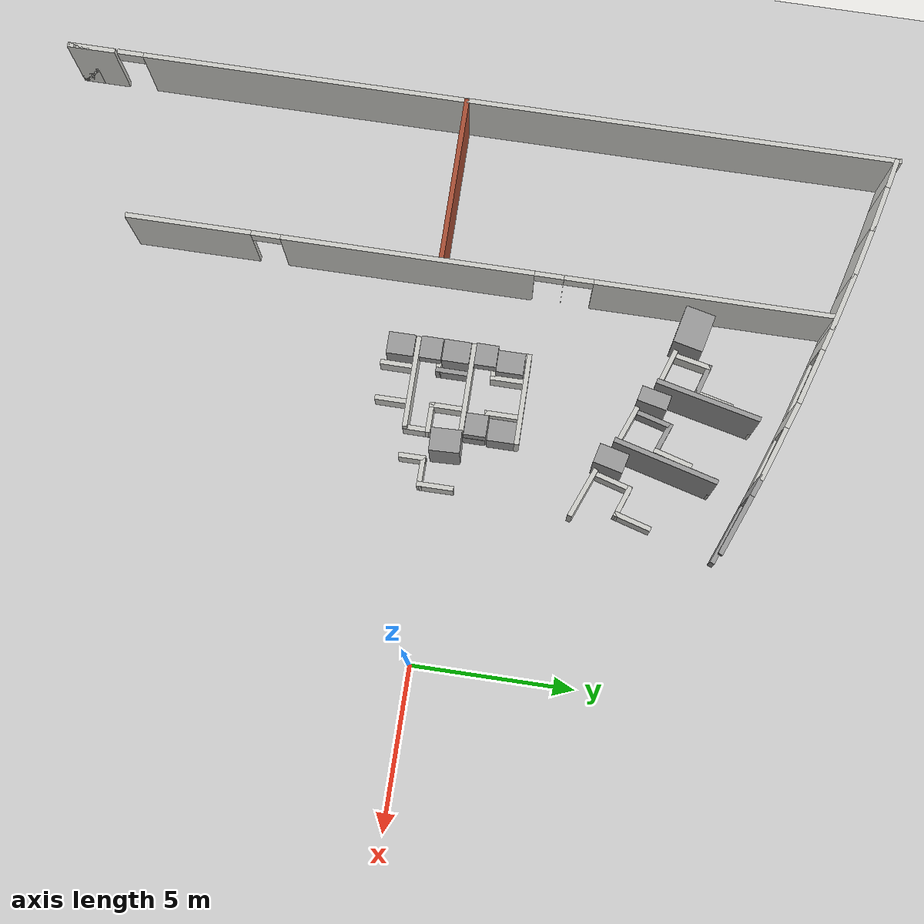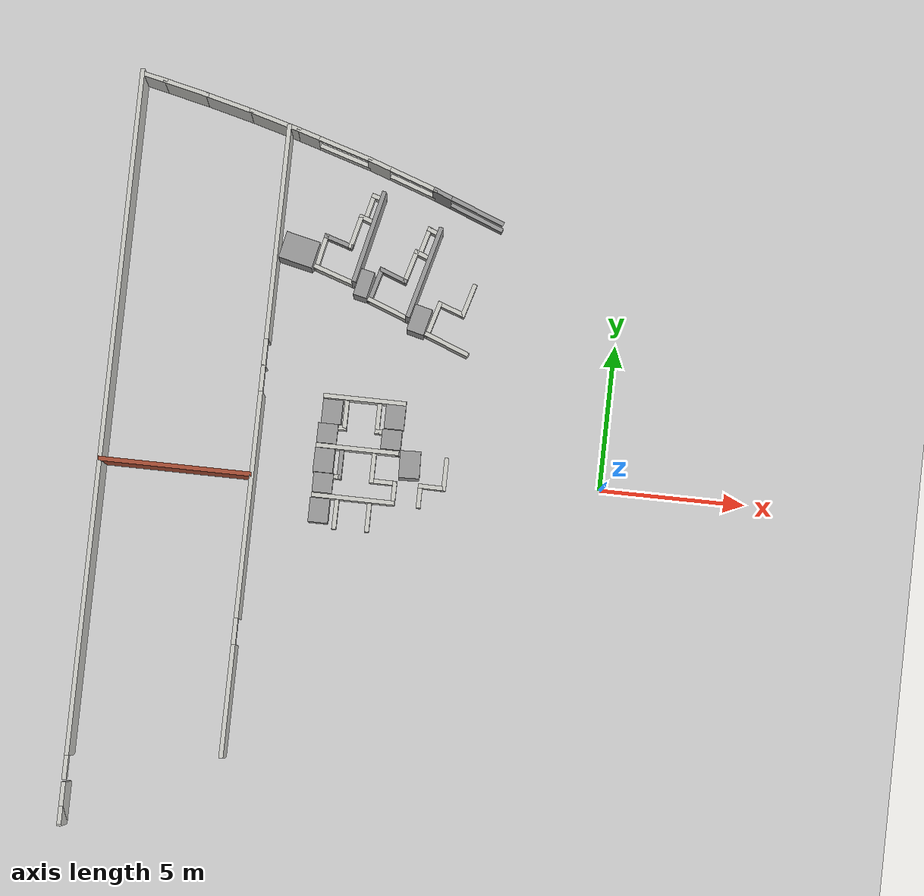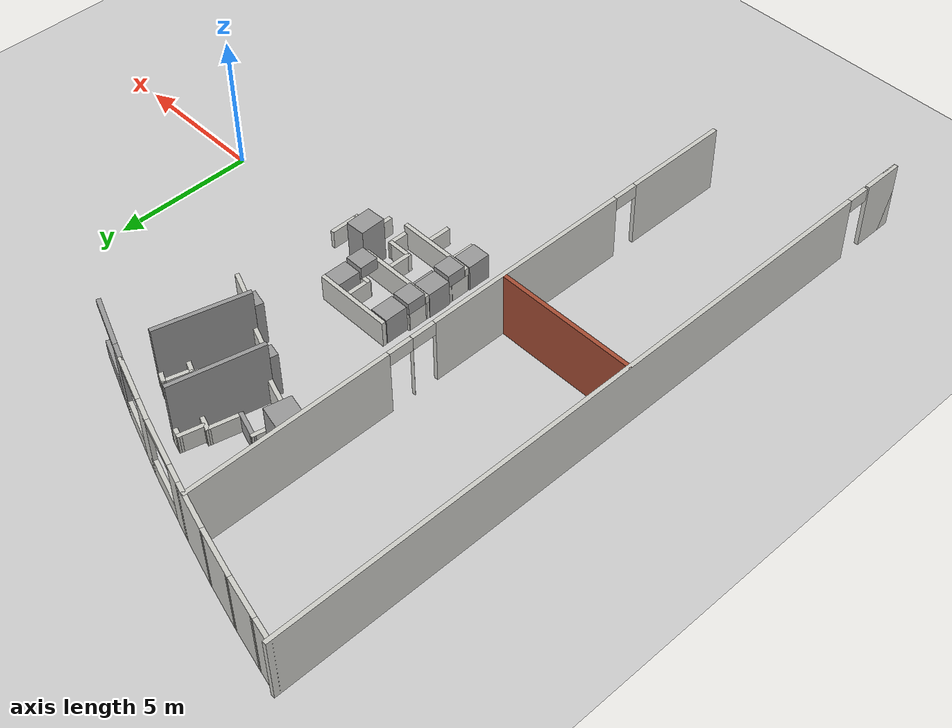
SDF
<sdf version="1.7">
 <world name="default">
  <model name="ground_plane">
   <static>1</static>
   <link name="link">
    <collision name="collision">
     <geometry><plane><normal>0 0 1</normal><size>100 100</size></plane></geometry>
     <surface><friction><ode><mu>100</mu><mu2>50</mu2></ode></friction></surface>
    </collision>
    <visual name="visual">
     <cast_shadows>0</cast_shadows>
     <geometry><plane><normal>0 0 1</normal><size>100 100</size></plane></geometry>
     <material>
      <script><uri>file://media/materials/scripts/gazebo.material</uri><name>Gazebo/Grey</name></script>
     </material>
    </visual>
   </link>
  </model>
  <model name="batclab">
   <pose>-2.42536 -0.386876 0 0 -0 0</pose>
   <link name="Wall_0">
    <pose>-14.7338 2.1e-05 0 0 -0 -1.57114</pose>
    <visual name="Wall_0_Visual_0">
     <pose>-1.19866 0 1.25 0 -0 0</pose>
     <geometry><box><size>23.5775 0.15 2.5</size></box></geometry>
     <material>
      <script><uri>file://media/materials/scripts/gazebo.material</uri><name>Gazebo/CeilingTiled</name></script>
      <ambient>1 1 1 1</ambient>
     </material>
     <meta><layer>0</layer></meta>
    </visual>
    <collision name="Wall_0_Collision_0">
     <geometry><box><size>23.5775 0.15 2.5</size></box></geometry>
     <pose>-1.19866 0 1.25 0 -0 0</pose>
    </collision>
    <visual name="Wall_0_Visual_1">
     <pose>12.2388 0 1.25 0 -0 0</pose>
     <geometry><box><size>1.49732 0.15 2.5</size></box></geometry>
     <material>
      <script><uri>file://media/materials/scripts/gazebo.material</uri><name>Gazebo/CeilingTiled</name></script>
      <ambient>1 1 1 1</ambient>
     </material>
     <meta><layer>0</layer></meta>
    </visual>
    <collision name="Wall_0_Collision_1">
     <geometry><box><size>1.49732 0.15 2.5</size></box></geometry>
     <pose>12.2388 0 1.25 0 -0 0</pose>
    </collision>
    <visual name="Wall_0_Visual_2">
     <pose>12.6483 0 1.25 0 -0 0</pose>
     <geometry><box><size>0.678351 0.15 2.5</size></box></geometry>
     <material>
      <script><uri>file://media/materials/scripts/gazebo.material</uri><name>Gazebo/CeilingTiled</name></script>
      <ambient>1 1 1 1</ambient>
     </material>
     <meta><layer>0</layer></meta>
    </visual>
    <collision name="Wall_0_Collision_2">
     <geometry><box><size>0.678351 0.15 2.5</size></box></geometry>
     <pose>12.6483 0 1.25 0 -0 0</pose>
    </collision>
    <visual name="Wall_0_Visual_3">
     <pose>10.9996 0 2.25 0 -0 0</pose>
     <geometry><box><size>0.81897 0.15 0.5</size></box></geometry>
     <material>
      <script><uri>file://media/materials/scripts/gazebo.material</uri><name>Gazebo/CeilingTiled</name></script>
      <ambient>1 1 1 1</ambient>
     </material>
     <meta><layer>0</layer></meta>
    </visual>
    <collision name="Wall_0_Collision_3">
     <geometry><box><size>0.81897 0.15 0.5</size></box></geometry>
     <pose>10.9996 0 2.25 0 -0 0</pose>
    </collision>
   </link>
   <link name="Wall_13">
    <pose>-9.5299 0.73431 0 0 -0 1.5708</pose>
    <visual name="Wall_13_Visual_0">
     <pose>-8.93757 0 1.25 0 -0 0</pose>
     <geometry><box><size>3.87486 0.15 2.5</size></box></geometry>
     <material>
      <script><uri>file://media/materials/scripts/gazebo.material</uri><name>Gazebo/CeilingTiled</name></script>
      <ambient>1 1 1 1</ambient>
     </material>
     <meta><layer>0</layer></meta>
    </visual>
    <collision name="Wall_13_Collision_0">
     <geometry><box><size>3.87486 0.15 2.5</size></box></geometry>
     <pose>-8.93757 0 1.25 0 -0 0</pose>
    </collision>
    <visual name="Wall_13_Visual_1">
     <pose>-2.21758 0 1.25 0 -0 0</pose>
     <geometry><box><size>7.76512 0.15 2.5</size></box></geometry>
     <material>
      <script><uri>file://media/materials/scripts/gazebo.material</uri><name>Gazebo/CeilingTiled</name></script>
      <ambient>1 1 1 1</ambient>
     </material>
     <meta><layer>0</layer></meta>
    </visual>
    <collision name="Wall_13_Collision_1">
     <geometry><box><size>7.76512 0.15 2.5</size></box></geometry>
     <pose>-2.21758 0 1.25 0 -0 0</pose>
    </collision>
    <visual name="Wall_13_Visual_2">
     <pose>2.56716 0 1.25 0 -0 0</pose>
     <geometry><box><size>0.004348 0.15 2.5</size></box></geometry>
     <material>
      <script><uri>file://media/materials/scripts/gazebo.material</uri><name>Gazebo/CeilingTiled</name></script>
      <ambient>1 1 1 1</ambient>
     </material>
     <meta><layer>0</layer></meta>
    </visual>
    <collision name="Wall_13_Collision_2">
     <geometry><box><size>0.004348 0.15 2.5</size></box></geometry>
     <pose>2.56716 0 1.25 0 -0 0</pose>
    </collision>
    <visual name="Wall_13_Visual_3">
     <pose>7.17216 0 1.25 0 -0 0</pose>
     <geometry><box><size>7.40567 0.15 2.5</size></box></geometry>
     <material>
      <script><uri>file://media/materials/scripts/gazebo.material</uri><name>Gazebo/CeilingTiled</name></script>
      <ambient>1 1 1 1</ambient>
     </material>
     <meta><layer>0</layer></meta>
    </visual>
    <collision name="Wall_13_Collision_3">
     <geometry><box><size>7.40567 0.15 2.5</size></box></geometry>
     <pose>7.17216 0 1.25 0 -0 0</pose>
    </collision>
    <visual name="Wall_13_Visual_4">
     <pose>-6.55014 0 2.25 0 -0 0</pose>
     <geometry><box><size>0.9 0.15 0.5</size></box></geometry>
     <material>
      <script><uri>file://media/materials/scripts/gazebo.material</uri><name>Gazebo/CeilingTiled</name></script>
      <ambient>1 1 1 1</ambient>
     </material>
     <meta><layer>0</layer></meta>
    </visual>
    <collision name="Wall_13_Collision_4">
     <geometry><box><size>0.9 0.15 0.5</size></box></geometry>
     <pose>-6.55014 0 2.25 0 -0 0</pose>
    </collision>
    <visual name="Wall_13_Visual_5">
     <pose>2.11498 0 2.25 0 -0 0</pose>
     <geometry><box><size>0.9 0.15 0.5</size></box></geometry>
     <material>
      <script><uri>file://media/materials/scripts/gazebo.material</uri><name>Gazebo/CeilingTiled</name></script>
      <ambient>1 1 1 1</ambient>
     </material>
     <meta><layer>0</layer></meta>
    </visual>
    <collision name="Wall_13_Collision_5">
     <geometry><box><size>0.9 0.15 0.5</size></box></geometry>
     <pose>2.11498 0 2.25 0 -0 0</pose>
    </collision>
    <visual name="Wall_13_Visual_6">
     <pose>3.01933 0 2.25 0 -0 0</pose>
     <geometry><box><size>0.9 0.15 0.5</size></box></geometry>
     <material>
      <script><uri>file://media/materials/scripts/gazebo.material</uri><name>Gazebo/CeilingTiled</name></script>
      <ambient>1 1 1 1</ambient>
     </material>
     <meta><layer>0</layer></meta>
    </visual>
    <collision name="Wall_13_Collision_6">
     <geometry><box><size>0.9 0.15 0.5</size></box></geometry>
     <pose>3.01933 0 2.25 0 -0 0</pose>
    </collision>
   </link>
   <link name="Wall_17">
    <collision name="Wall_17_Collision">
     <geometry><box><size>5.25 0.15 2.5</size></box></geometry>
     <pose>0 0 1.25 0 -0 0</pose>
    </collision>
    <visual name="Wall_17_Visual">
     <pose>0 0 1.25 0 -0 0</pose>
     <geometry><box><size>5.25 0.15 2.5</size></box></geometry>
     <material>
      <script><uri>file://media/materials/scripts/gazebo.material</uri><name>Gazebo/Bricks</name></script>
      <ambient>1 1 1 1</ambient>
     </material>
     <meta><layer>0</layer></meta>
    </visual>
    <pose>-12.1548 -0.450287 0 0 -0 0</pose>
   </link>
   <link name="Wall_174">
    <collision name="Wall_174_Collision">
     <geometry><box><size>1.13639 0.15 0.7</size></box></geometry>
     <pose>0 0 0.35 0 -0 0</pose>
    </collision>
    <visual name="Wall_174_Visual">
     <pose>0 0 0.35 0 -0 0</pose>
     <geometry><box><size>1.13639 0.15 0.7</size></box></geometry>
     <material>
      <script><uri>file://media/materials/scripts/gazebo.material</uri><name>Gazebo/CeilingTiled</name></script>
      <ambient>1 1 1 1</ambient>
     </material>
     <meta><layer>0</layer></meta>
    </visual>
    <pose>-2.97942 0.340393 0 0 -0 -1.5708</pose>
   </link>
   <link name="Wall_175">
    <collision name="Wall_175_Collision">
     <geometry><box><size>0.960148 0.15 0.7</size></box></geometry>
     <pose>0 0 0.35 0 -0 0</pose>
    </collision>
    <visual name="Wall_175_Visual">
     <pose>0 0 0.35 0 -0 0</pose>
     <geometry><box><size>0.960148 0.15 0.7</size></box></geometry>
     <material>
      <script><uri>file://media/materials/scripts/gazebo.material</uri><name>Gazebo/CeilingTiled</name></script>
      <ambient>1 1 1 1</ambient>
     </material>
     <meta><layer>0</layer></meta>
    </visual>
    <pose>-3.38442 -0.149607 0 0 -0 3.13418</pose>
   </link>
   <link name="Wall_176">
    <collision name="Wall_176_Collision">
     <geometry><box><size>0.838069 0.15 0.7</size></box></geometry>
     <pose>0 0 0.35 0 -0 0</pose>
    </collision>
    <visual name="Wall_176_Visual">
     <pose>0 0 0.35 0 -0 0</pose>
     <geometry><box><size>0.838069 0.15 0.7</size></box></geometry>
     <material>
      <script><uri>file://media/materials/scripts/gazebo.material</uri><name>Gazebo/CeilingTiled</name></script>
      <ambient>1 1 1 1</ambient>
     </material>
     <meta><layer>0</layer></meta>
    </visual>
    <pose>-3.78792 -0.490607 0 0 -0 -1.56644</pose>
   </link>
   <link name="Wall_19">
    <collision name="Wall_19_Collision">
     <geometry><box><size>0.980234 0.15 2.5</size></box></geometry>
     <pose>0 0 1.25 0 -0 0</pose>
    </collision>
    <visual name="Wall_19_Visual">
     <pose>0 0 1.25 0 -0 0</pose>
     <geometry><box><size>0.980234 0.15 2.5</size></box></geometry>
     <material>
      <script><uri>file://media/materials/scripts/gazebo.material</uri><name>Gazebo/CeilingTiled</name></script>
      <ambient>1 1 1 1</ambient>
     </material>
     <meta><layer>0</layer></meta>
    </visual>
    <pose>-14.3103 12.7485 0 0 -0 -0.214253</pose>
   </link>
   <link name="Wall_20">
    <collision name="Wall_20_Collision">
     <geometry><box><size>1.63752 0.15 2.5</size></box></geometry>
     <pose>0 0 1.25 0 -0 0</pose>
    </collision>
    <visual name="Wall_20_Visual">
     <pose>0 0 1.25 0 -0 0</pose>
     <geometry><box><size>1.63752 0.15 2.5</size></box></geometry>
     <material>
      <script><uri>file://media/materials/scripts/gazebo.material</uri><name>Gazebo/CeilingTiled</name></script>
      <ambient>1 1 1 1</ambient>
     </material>
     <meta><layer>0</layer></meta>
    </visual>
    <pose>-13.1787 12.4947 0 0 -0 -0.224148</pose>
   </link>
   <link name="Wall_21">
    <collision name="Wall_21_Collision">
     <geometry><box><size>1.79395 0.15 2.5</size></box></geometry>
     <pose>0 0 1.25 0 -0 0</pose>
    </collision>
    <visual name="Wall_21_Visual">
     <pose>0 0 1.25 0 -0 0</pose>
     <geometry><box><size>1.79395 0.15 2.5</size></box></geometry>
     <material>
      <script><uri>file://media/materials/scripts/gazebo.material</uri><name>Gazebo/CeilingTiled</name></script>
      <ambient>1 1 1 1</ambient>
     </material>
     <meta><layer>0</layer></meta>
    </visual>
    <pose>-11.6562 12.1282 0 0 -0 -0.247197</pose>
   </link>
   <link name="Wall_22">
    <collision name="Wall_22_Collision">
     <geometry><box><size>1.89028 0.15 2.5</size></box></geometry>
     <pose>0 0 1.25 0 -0 0</pose>
    </collision>
    <visual name="Wall_22_Visual">
     <pose>0 0 1.25 0 -0 0</pose>
     <geometry><box><size>1.89028 0.15 2.5</size></box></geometry>
     <material>
      <script><uri>file://media/materials/scripts/gazebo.material</uri><name>Gazebo/CeilingTiled</name></script>
      <ambient>1 1 1 1</ambient>
     </material>
     <meta><layer>0</layer></meta>
    </visual>
    <pose>-10.0209 11.694 0 0 -0 -0.271178</pose>
   </link>
   <link name="Wall_25">
    <pose>-7.91226 11.0755 0 0 -0 -0.294575</pose>
    <visual name="Wall_25_Visual_0">
     <pose>-0.982686 0 1.25 0 -0 0</pose>
     <geometry><box><size>0.839533 0.15 2.5</size></box></geometry>
     <material>
      <script><uri>file://media/materials/scripts/gazebo.material</uri><name>Gazebo/CeilingTiled</name></script>
      <ambient>1 1 1 1</ambient>
     </material>
     <meta><layer>0</layer></meta>
    </visual>
    <collision name="Wall_25_Collision_0">
     <geometry><box><size>0.839533 0.15 2.5</size></box></geometry>
     <pose>-0.982686 0 1.25 0 -0 0</pose>
    </collision>
    <visual name="Wall_25_Visual_1">
     <pose>0.419767 0 0.35 0 -0 0</pose>
     <geometry><box><size>1.96537 0.15 0.7</size></box></geometry>
     <material>
      <script><uri>file://media/materials/scripts/gazebo.material</uri><name>Gazebo/CeilingTiled</name></script>
      <ambient>1 1 1 1</ambient>
     </material>
     <meta><layer>0</layer></meta>
    </visual>
    <collision name="Wall_25_Collision_1">
     <geometry><box><size>1.96537 0.15 0.7</size></box></geometry>
     <pose>0.419767 0 0.35 0 -0 0</pose>
    </collision>
    <visual name="Wall_25_Visual_2">
     <pose>0.419767 0 2.4 0 -0 0</pose>
     <geometry><box><size>1.96537 0.15 0.2</size></box></geometry>
     <material>
      <script><uri>file://media/materials/scripts/gazebo.material</uri><name>Gazebo/CeilingTiled</name></script>
      <ambient>1 1 1 1</ambient>
     </material>
     <meta><layer>0</layer></meta>
    </visual>
    <collision name="Wall_25_Collision_2">
     <geometry><box><size>1.96537 0.15 0.2</size></box></geometry>
     <pose>0.419767 0 2.4 0 -0 0</pose>
    </collision>
   </link>
   <link name="Wall_26">
    <pose>-5.47851 10.2871 0 0 -0 -0.333469</pose>
    <visual name="Wall_26_Visual_0">
     <pose>-0.885369 0 1.25 0 -0 0</pose>
     <geometry><box><size>0.841858 0.15 2.5</size></box></geometry>
     <material>
      <script><uri>file://media/materials/scripts/gazebo.material</uri><name>Gazebo/CeilingTiled</name></script>
      <ambient>1 1 1 1</ambient>
     </material>
     <meta><layer>0</layer></meta>
    </visual>
    <collision name="Wall_26_Collision_0">
     <geometry><box><size>0.841858 0.15 2.5</size></box></geometry>
     <pose>-0.885369 0 1.25 0 -0 0</pose>
    </collision>
    <visual name="Wall_26_Visual_1">
     <pose>0.420929 0 0.35 0 -0 0</pose>
     <geometry><box><size>1.77074 0.15 0.7</size></box></geometry>
     <material>
      <script><uri>file://media/materials/scripts/gazebo.material</uri><name>Gazebo/CeilingTiled</name></script>
      <ambient>1 1 1 1</ambient>
     </material>
     <meta><layer>0</layer></meta>
    </visual>
    <collision name="Wall_26_Collision_1">
     <geometry><box><size>1.77074 0.15 0.7</size></box></geometry>
     <pose>0.420929 0 0.35 0 -0 0</pose>
    </collision>
    <visual name="Wall_26_Visual_2">
     <pose>0.420929 0 2.4 0 -0 0</pose>
     <geometry><box><size>1.77074 0.15 0.2</size></box></geometry>
     <material>
      <script><uri>file://media/materials/scripts/gazebo.material</uri><name>Gazebo/CeilingTiled</name></script>
      <ambient>1 1 1 1</ambient>
     </material>
     <meta><layer>0</layer></meta>
    </visual>
    <collision name="Wall_26_Collision_2">
     <geometry><box><size>1.77074 0.15 0.2</size></box></geometry>
     <pose>0.420929 0 2.4 0 -0 0</pose>
    </collision>
   </link>
   <link name="Wall_260">
    <collision name="Wall_260_Collision">
     <geometry><box><size>1.61994 0.15 1</size></box></geometry>
     <pose>0 0 0.5 0 -0 0</pose>
    </collision>
    <visual name="Wall_260_Visual">
     <pose>0 0 0.5 0 -0 0</pose>
     <geometry><box><size>1.61994 0.15 1</size></box></geometry>
     <material>
      <script><uri>file://media/materials/scripts/gazebo.material</uri><name>Gazebo/CeilingTiled</name></script>
      <ambient>1 1 1 1</ambient>
     </material>
     <meta><layer>0</layer></meta>
    </visual>
    <pose>-7.45592 6.77139 0 0 -0 -0.321105</pose>
   </link>
   <link name="Wall_261">
    <collision name="Wall_261_Collision">
     <geometry><box><size>3.26384 0.15 2.5</size></box></geometry>
     <pose>0 0 1.25 0 -0 0</pose>
    </collision>
    <visual name="Wall_261_Visual">
     <pose>0 0 1.25 0 -0 0</pose>
     <geometry><box><size>3.26384 0.15 2.5</size></box></geometry>
     <material>
      <script><uri>file://media/materials/scripts/gazebo.material</uri><name>Gazebo/Grey</name></script>
      <ambient>1 1 1 1</ambient>
     </material>
     <meta><layer>0</layer></meta>
    </visual>
    <pose>-6.41292 8.05739 0 0 -0 1.34701</pose>
   </link>
   <link name="Wall_262">
    <collision name="Wall_262_Collision">
     <geometry><box><size>0.531707 0.15 0.7</size></box></geometry>
     <pose>0 0 0.35 0 -0 0</pose>
    </collision>
    <visual name="Wall_262_Visual">
     <pose>0 0 0.35 0 -0 0</pose>
     <geometry><box><size>0.531707 0.15 0.7</size></box></geometry>
     <material>
      <script><uri>file://media/materials/scripts/gazebo.material</uri><name>Gazebo/CeilingTiled</name></script>
      <ambient>1 1 1 1</ambient>
     </material>
     <meta><layer>0</layer></meta>
    </visual>
    <pose>-6.24992 9.62989 0 0 -0 2.85139</pose>
   </link>
   <link name="Wall_263">
    <collision name="Wall_263_Collision">
     <geometry><box><size>0.909916 0.15 0.7</size></box></geometry>
     <pose>0 0 0.35 0 -0 0</pose>
    </collision>
    <visual name="Wall_263_Visual">
     <pose>0 0 0.35 0 -0 0</pose>
     <geometry><box><size>0.909916 0.15 0.7</size></box></geometry>
     <material>
      <script><uri>file://media/materials/scripts/gazebo.material</uri><name>Gazebo/CeilingTiled</name></script>
      <ambient>1 1 1 1</ambient>
     </material>
     <meta><layer>0</layer></meta>
    </visual>
    <pose>-6.52392 9.31539 0 0 -0 -1.81386</pose>
   </link>
   <link name="Wall_265">
    <collision name="Wall_265_Collision">
     <geometry><box><size>1.29489 0.15 0.7</size></box></geometry>
     <pose>0 0 0.35 0 -0 0</pose>
    </collision>
    <visual name="Wall_265_Visual">
     <pose>0 0 0.35 0 -0 0</pose>
     <geometry><box><size>1.29489 0.15 0.7</size></box></geometry>
     <material>
      <script><uri>file://media/materials/scripts/gazebo.material</uri><name>Gazebo/CeilingTiled</name></script>
      <ambient>1 1 1 1</ambient>
     </material>
     <meta><layer>0</layer></meta>
    </visual>
    <pose>-8.03642 7.56339 0 0 -0 1.36483</pose>
   </link>
   <link name="Wall_266">
    <collision name="Wall_266_Collision">
     <geometry><box><size>1.05966 0.15 0.7</size></box></geometry>
     <pose>0 0 0.35 0 -0 0</pose>
    </collision>
    <visual name="Wall_266_Visual">
     <pose>0 0 0.35 0 -0 0</pose>
     <geometry><box><size>1.05966 0.15 0.7</size></box></geometry>
     <material>
      <script><uri>file://media/materials/scripts/gazebo.material</uri><name>Gazebo/Grey</name></script>
      <ambient>1 1 1 1</ambient>
     </material>
     <meta><layer>0</layer></meta>
    </visual>
    <pose>-7.48492 7.98889 0 0 -0 -0.300196</pose>
   </link>
   <link name="Wall_268">
    <collision name="Wall_268_Collision">
     <geometry><box><size>1.24414 0.15 0.7</size></box></geometry>
     <pose>0 0 0.35 0 -0 0</pose>
    </collision>
    <visual name="Wall_268_Visual">
     <pose>0 0 0.35 0 -0 0</pose>
     <geometry><box><size>1.24414 0.15 0.7</size></box></geometry>
     <material>
      <script><uri>file://media/materials/scripts/gazebo.material</uri><name>Gazebo/CeilingTiled</name></script>
      <ambient>1 1 1 1</ambient>
     </material>
     <meta><layer>0</layer></meta>
    </visual>
    <pose>-6.92192 8.38639 0 0 -0 1.33379</pose>
   </link>
   <link name="Wall_269">
    <collision name="Wall_269_Collision">
     <geometry><box><size>0.645417 0.15 0.7</size></box></geometry>
     <pose>0 0 0.35 0 -0 0</pose>
    </collision>
    <visual name="Wall_269_Visual">
     <pose>0 0 0.35 0 -0 0</pose>
     <geometry><box><size>0.645417 0.15 0.7</size></box></geometry>
     <material>
      <script><uri>file://media/materials/scripts/gazebo.material</uri><name>Gazebo/CeilingTiled</name></script>
      <ambient>1 1 1 1</ambient>
     </material>
     <meta><layer>0</layer></meta>
    </visual>
    <pose>-6.55892 8.83839 0 0 -0 -0.32877</pose>
   </link>
   <link name="Wall_27">
    <pose>-3.13637 9.42777 0 0 -0 -0.369334</pose>
    <visual name="Wall_27_Visual_0">
     <pose>-0.991438 0 1.25 0 -0 0</pose>
     <geometry><box><size>0.694935 0.15 2.5</size></box></geometry>
     <material>
      <script><uri>file://media/materials/scripts/gazebo.material</uri><name>Gazebo/Grey</name></script>
      <ambient>1 1 1 1</ambient>
     </material>
     <meta><layer>0</layer></meta>
    </visual>
    <collision name="Wall_27_Collision_0">
     <geometry><box><size>0.694935 0.15 2.5</size></box></geometry>
     <pose>-0.991438 0 1.25 0 -0 0</pose>
    </collision>
    <visual name="Wall_27_Visual_1">
     <pose>0.347468 0 0.35 0 -0 0</pose>
     <geometry><box><size>1.98288 0.15 0.7</size></box></geometry>
     <material>
      <script><uri>file://media/materials/scripts/gazebo.material</uri><name>Gazebo/Grey</name></script>
      <ambient>1 1 1 1</ambient>
     </material>
     <meta><layer>0</layer></meta>
    </visual>
    <collision name="Wall_27_Collision_1">
     <geometry><box><size>1.98288 0.15 0.7</size></box></geometry>
     <pose>0.347468 0 0.35 0 -0 0</pose>
    </collision>
    <visual name="Wall_27_Visual_2">
     <pose>0.347468 0 2.4 0 -0 0</pose>
     <geometry><box><size>1.98288 0.15 0.2</size></box></geometry>
     <material>
      <script><uri>file://media/materials/scripts/gazebo.material</uri><name>Gazebo/Grey</name></script>
      <ambient>1 1 1 1</ambient>
     </material>
     <meta><layer>0</layer></meta>
    </visual>
    <collision name="Wall_27_Collision_2">
     <geometry><box><size>1.98288 0.15 0.2</size></box></geometry>
     <pose>0.347468 0 2.4 0 -0 0</pose>
    </collision>
   </link>
   <link name="Wall_271">
    <collision name="Wall_271_Collision">
     <geometry><box><size>1.65134 0.15 1</size></box></geometry>
     <pose>0 0 0.5 0 -0 0</pose>
    </collision>
    <visual name="Wall_271_Visual">
     <pose>0 0 0.5 0 -0 0</pose>
     <geometry><box><size>1.65134 0.15 1</size></box></geometry>
     <material>
      <script><uri>file://media/materials/scripts/gazebo.material</uri><name>Gazebo/CeilingTiled</name></script>
      <ambient>1 1 1 1</ambient>
     </material>
     <meta><layer>0</layer></meta>
    </visual>
    <pose>-5.49842 5.79389 0 0 -0 -0.365787</pose>
   </link>
   <link name="Wall_272">
    <collision name="Wall_272_Collision">
     <geometry><box><size>3.2793 0.15 2.5</size></box></geometry>
     <pose>0 0 1.25 0 -0 0</pose>
    </collision>
    <visual name="Wall_272_Visual">
     <pose>0 0 1.25 0 -0 0</pose>
     <geometry><box><size>3.2793 0.15 2.5</size></box></geometry>
     <material>
      <script><uri>file://media/materials/scripts/gazebo.material</uri><name>Gazebo/Grey</name></script>
      <ambient>1 1 1 1</ambient>
     </material>
     <meta><layer>0</layer></meta>
    </visual>
    <pose>-4.40192 7.03939 0 0 -0 1.31528</pose>
   </link>
   <link name="Wall_274">
    <collision name="Wall_274_Collision">
     <geometry><box><size>1.28968 0.15 0.7</size></box></geometry>
     <pose>0 0 0.35 0 -0 0</pose>
    </collision>
    <visual name="Wall_274_Visual">
     <pose>0 0 0.35 0 -0 0</pose>
     <geometry><box><size>1.28968 0.15 0.7</size></box></geometry>
     <material>
      <script><uri>file://media/materials/scripts/gazebo.material</uri><name>Gazebo/Grey</name></script>
      <ambient>1 1 1 1</ambient>
     </material>
     <meta><layer>0</layer></meta>
    </visual>
    <pose>-6.04992 6.61239 0 0 -0 1.30539</pose>
   </link>
   <link name="Wall_275">
    <collision name="Wall_275_Collision">
     <geometry><box><size>1.04613 0.15 0.7</size></box></geometry>
     <pose>0 0 0.35 0 -0 0</pose>
    </collision>
    <visual name="Wall_275_Visual">
     <pose>0 0 0.35 0 -0 0</pose>
     <geometry><box><size>1.04613 0.15 0.7</size></box></geometry>
     <material>
      <script><uri>file://media/materials/scripts/gazebo.material</uri><name>Gazebo/Grey</name></script>
      <ambient>1 1 1 1</ambient>
     </material>
     <meta><layer>0</layer></meta>
    </visual>
    <pose>-5.48092 7.00439 0 0 -0 -0.360207</pose>
   </link>
   <link name="Wall_276">
    <collision name="Wall_276_Collision">
     <geometry><box><size>1.25041 0.15 0.7</size></box></geometry>
     <pose>0 0 0.35 0 -0 0</pose>
    </collision>
    <visual name="Wall_276_Visual">
     <pose>0 0 0.35 0 -0 0</pose>
     <geometry><box><size>1.25041 0.15 0.7</size></box></geometry>
     <material>
      <script><uri>file://media/materials/scripts/gazebo.material</uri><name>Gazebo/CeilingTiled</name></script>
      <ambient>1 1 1 1</ambient>
     </material>
     <meta><layer>0</layer></meta>
    </visual>
    <pose>-4.91242 7.37589 0 0 -0 1.29649</pose>
   </link>
   <link name="Wall_277">
    <collision name="Wall_277_Collision">
     <geometry><box><size>0.626895 0.15 0.7</size></box></geometry>
     <pose>0 0 0.35 0 -0 0</pose>
    </collision>
    <visual name="Wall_277_Visual">
     <pose>0 0 0.35 0 -0 0</pose>
     <geometry><box><size>0.626895 0.15 0.7</size></box></geometry>
     <material>
      <script><uri>file://media/materials/scripts/gazebo.material</uri><name>Gazebo/CeilingTiled</name></script>
      <ambient>1 1 1 1</ambient>
     </material>
     <meta><layer>0</layer></meta>
    </visual>
    <pose>-4.54292 7.81489 0 0 -0 -0.389466</pose>
   </link>
   <link name="Wall_279">
    <collision name="Wall_279_Collision">
     <geometry><box><size>0.575914 0.15 0.7</size></box></geometry>
     <pose>0 0 0.35 0 -0 0</pose>
    </collision>
    <visual name="Wall_279_Visual">
     <pose>0 0 0.35 0 -0 0</pose>
     <geometry><box><size>0.575914 0.15 0.7</size></box></geometry>
     <material>
      <script><uri>file://media/materials/scripts/gazebo.material</uri><name>Gazebo/CeilingTiled</name></script>
      <ambient>1 1 1 1</ambient>
     </material>
     <meta><layer>0</layer></meta>
    </visual>
    <pose>-4.20092 8.64039 0 0 -0 2.72099</pose>
   </link>
   <link name="Wall_280">
    <collision name="Wall_280_Collision">
     <geometry><box><size>1.00695 0.15 0.7</size></box></geometry>
     <pose>0 0 0.35 0 -0 0</pose>
    </collision>
    <visual name="Wall_280_Visual">
     <pose>0 0 0.35 0 -0 0</pose>
     <geometry><box><size>1.00695 0.15 0.7</size></box></geometry>
     <material>
      <script><uri>file://media/materials/scripts/gazebo.material</uri><name>Gazebo/CeilingTiled</name></script>
      <ambient>1 1 1 1</ambient>
     </material>
     <meta><layer>0</layer></meta>
    </visual>
    <pose>-4.50992 8.31439 0 0 -0 -1.84124</pose>
   </link>
   <link name="Wall_282">
    <collision name="Wall_282_Collision">
     <geometry><box><size>1.65982 0.15 1</size></box></geometry>
     <pose>0 0 0.5 0 -0 0</pose>
    </collision>
    <visual name="Wall_282_Visual">
     <pose>0 0 0.5 0 -0 0</pose>
     <geometry><box><size>1.65982 0.15 1</size></box></geometry>
     <material>
      <script><uri>file://media/materials/scripts/gazebo.material</uri><name>Gazebo/CeilingTiled</name></script>
      <ambient>1 1 1 1</ambient>
     </material>
     <meta><layer>0</layer></meta>
    </visual>
    <pose>-3.39592 4.79789 0 0 -0 -0.372023</pose>
   </link>
   <link name="Wall_288">
    <collision name="Wall_288_Collision">
     <geometry><box><size>1.31548 0.15 0.7</size></box></geometry>
     <pose>0 0 0.35 0 -0 0</pose>
    </collision>
    <visual name="Wall_288_Visual">
     <pose>0 0 0.35 0 -0 0</pose>
     <geometry><box><size>1.31548 0.15 0.7</size></box></geometry>
     <material>
      <script><uri>file://media/materials/scripts/gazebo.material</uri><name>Gazebo/CeilingTiled</name></script>
      <ambient>1 1 1 1</ambient>
     </material>
     <meta><layer>0</layer></meta>
    </visual>
    <pose>-3.93892 5.63239 0 0 -0 1.29167</pose>
   </link>
   <link name="Wall_289">
    <collision name="Wall_289_Collision">
     <geometry><box><size>1.03612 0.15 0.7</size></box></geometry>
     <pose>0 0 0.35 0 -0 0</pose>
    </collision>
    <visual name="Wall_289_Visual">
     <pose>0 0 0.35 0 -0 0</pose>
     <geometry><box><size>1.03612 0.15 0.7</size></box></geometry>
     <material>
      <script><uri>file://media/materials/scripts/gazebo.material</uri><name>Gazebo/CeilingTiled</name></script>
      <ambient>1 1 1 1</ambient>
     </material>
     <meta><layer>0</layer></meta>
    </visual>
    <pose>-3.36142 6.04389 0 0 -0 -0.342112</pose>
   </link>
   <link name="Wall_291">
    <collision name="Wall_291_Collision">
     <geometry><box><size>1.20867 0.15 0.7</size></box></geometry>
     <pose>0 0 0.35 0 -0 0</pose>
    </collision>
    <visual name="Wall_291_Visual">
     <pose>0 0 0.35 0 -0 0</pose>
     <geometry><box><size>1.20867 0.15 0.7</size></box></geometry>
     <material>
      <script><uri>file://media/materials/scripts/gazebo.material</uri><name>Gazebo/CeilingTiled</name></script>
      <ambient>1 1 1 1</ambient>
     </material>
     <meta><layer>0</layer></meta>
    </visual>
    <pose>-2.79842 6.40439 0 0 -0 1.29146</pose>
   </link>
   <link name="Wall_42">
    <collision name="Wall_42_Collision">
     <geometry><box><size>2.865 0.15 1</size></box></geometry>
     <pose>0 0 0.5 0 -0 0</pose>
    </collision>
    <visual name="Wall_42_Visual">
     <pose>0 0 0.5 0 -0 0</pose>
     <geometry><box><size>2.865 0.15 1</size></box></geometry>
     <material>
      <script><uri>file://media/materials/scripts/gazebo.material</uri><name>Gazebo/CeilingTiled</name></script>
      <ambient>1 1 1 1</ambient>
     </material>
     <meta><layer>0</layer></meta>
    </visual>
    <pose>-5.99268 2.59786 0 0 -0 0</pose>
   </link>
   <link name="Wall_44">
    <collision name="Wall_44_Collision">
     <geometry><box><size>1.16088 0.15 0.7</size></box></geometry>
     <pose>0 0 0.35 0 -0 0</pose>
    </collision>
    <visual name="Wall_44_Visual">
     <pose>0 0 0.35 0 -0 0</pose>
     <geometry><box><size>1.16088 0.15 0.7</size></box></geometry>
     <material>
      <script><uri>file://media/materials/scripts/gazebo.material</uri><name>Gazebo/CeilingTiled</name></script>
      <ambient>1 1 1 1</ambient>
     </material>
     <meta><layer>0</layer></meta>
    </visual>
    <pose>-6.60442 2.07689 0 0 -0 -1.5708</pose>
   </link>
   <link name="Wall_45">
    <collision name="Wall_45_Collision">
     <geometry><box><size>0.969551 0.15 0.7</size></box></geometry>
     <pose>0 0 0.35 0 -0 0</pose>
    </collision>
    <visual name="Wall_45_Visual">
     <pose>0 0 0.35 0 -0 0</pose>
     <geometry><box><size>0.969551 0.15 0.7</size></box></geometry>
     <material>
      <script><uri>file://media/materials/scripts/gazebo.material</uri><name>Gazebo/CeilingTiled</name></script>
      <ambient>1 1 1 1</ambient>
     </material>
     <meta><layer>0</layer></meta>
    </visual>
    <pose>-7.01442 1.57089 0 0 -0 -3.14037</pose>
   </link>
   <link name="Wall_46">
    <collision name="Wall_46_Collision">
     <geometry><box><size>0.845494 0.15 0.7</size></box></geometry>
     <pose>0 0 0.35 0 -0 0</pose>
    </collision>
    <visual name="Wall_46_Visual">
     <pose>0 0 0.35 0 -0 0</pose>
     <geometry><box><size>0.845494 0.15 0.7</size></box></geometry>
     <material>
      <script><uri>file://media/materials/scripts/gazebo.material</uri><name>Gazebo/CeilingTiled</name></script>
      <ambient>1 1 1 1</ambient>
     </material>
     <meta><layer>0</layer></meta>
    </visual>
    <pose>-7.42642 1.22289 0 0 -0 -1.57655</pose>
   </link>
   <link name="Wall_47">
    <collision name="Wall_47_Collision">
     <geometry><box><size>2.865 0.15 1</size></box></geometry>
     <pose>0 0 0.5 0 -0 0</pose>
    </collision>
    <visual name="Wall_47_Visual">
     <pose>0 0 0.5 0 -0 0</pose>
     <geometry><box><size>2.865 0.15 1</size></box></geometry>
     <material>
      <script><uri>file://media/materials/scripts/gazebo.material</uri><name>Gazebo/CeilingTiled</name></script>
      <ambient>1 1 1 1</ambient>
     </material>
     <meta><layer>0</layer></meta>
    </visual>
    <pose>-6.07076 0.875293 0 0 -0 -7.3e-05</pose>
   </link>
   <link name="Wall_49">
    <collision name="Wall_49_Collision">
     <geometry><box><size>1.16888 0.15 0.7</size></box></geometry>
     <pose>0 0 0.35 0 -0 0</pose>
    </collision>
    <visual name="Wall_49_Visual">
     <pose>0 0 0.35 0 -0 0</pose>
     <geometry><box><size>1.16888 0.15 0.7</size></box></geometry>
     <material>
      <script><uri>file://media/materials/scripts/gazebo.material</uri><name>Gazebo/CeilingTiled</name></script>
      <ambient>1 1 1 1</ambient>
     </material>
     <meta><layer>0</layer></meta>
    </visual>
    <pose>-5.47342 2.07289 0 0 -0 -1.5708</pose>
   </link>
   <link name="Wall_50">
    <collision name="Wall_50_Collision">
     <geometry><box><size>0.954505 0.15 0.7</size></box></geometry>
     <pose>0 0 0.35 0 -0 0</pose>
    </collision>
    <visual name="Wall_50_Visual">
     <pose>0 0 0.35 0 -0 0</pose>
     <geometry><box><size>0.954505 0.15 0.7</size></box></geometry>
     <material>
      <script><uri>file://media/materials/scripts/gazebo.material</uri><name>Gazebo/CeilingTiled</name></script>
      <ambient>1 1 1 1</ambient>
     </material>
     <meta><layer>0</layer></meta>
    </visual>
    <pose>-5.07092 1.56139 0 0 -0 -0.004969</pose>
   </link>
   <link name="Wall_51">
    <collision name="Wall_51_Collision">
     <geometry><box><size>0.836001 0.15 0.7</size></box></geometry>
     <pose>0 0 0.35 0 -0 0</pose>
    </collision>
    <visual name="Wall_51_Visual">
     <pose>0 0 0.35 0 -0 0</pose>
     <geometry><box><size>0.836001 0.15 0.7</size></box></geometry>
     <material>
      <script><uri>file://media/materials/scripts/gazebo.material</uri><name>Gazebo/Grey</name></script>
      <ambient>1 1 1 1</ambient>
     </material>
     <meta><layer>0</layer></meta>
    </visual>
    <pose>-4.66892 1.21639 0 0 -0 -1.57225</pose>
   </link>
   <link name="Wall_53">
    <collision name="Wall_53_Collision">
     <geometry><box><size>1.13872 0.15 0.7</size></box></geometry>
     <pose>0 0 0.35 0 -0 0</pose>
    </collision>
    <visual name="Wall_53_Visual">
     <pose>0 0 0.35 0 -0 0</pose>
     <geometry><box><size>1.13872 0.15 0.7</size></box></geometry>
     <material>
      <script><uri>file://media/materials/scripts/gazebo.material</uri><name>Gazebo/Grey</name></script>
      <ambient>1 1 1 1</ambient>
     </material>
     <meta><layer>0</layer></meta>
    </visual>
    <pose>-6.60542 0.366893 0 0 -0 -1.5708</pose>
   </link>
   <link name="Wall_54">
    <collision name="Wall_54_Collision">
     <geometry><box><size>0.954505 0.15 0.7</size></box></geometry>
     <pose>0 0 0.35 0 -0 0</pose>
    </collision>
    <visual name="Wall_54_Visual">
     <pose>0 0 0.35 0 -0 0</pose>
     <geometry><box><size>0.954505 0.15 0.7</size></box></geometry>
     <material>
      <script><uri>file://media/materials/scripts/gazebo.material</uri><name>Gazebo/CeilingTiled</name></script>
      <ambient>1 1 1 1</ambient>
     </material>
     <meta><layer>0</layer></meta>
    </visual>
    <pose>-7.00792 -0.125607 0 0 -0 3.13662</pose>
   </link>
   <link name="Wall_55">
    <collision name="Wall_55_Collision">
     <geometry><box><size>0.86813 0.15 0.7</size></box></geometry>
     <pose>0 0 0.35 0 -0 0</pose>
    </collision>
    <visual name="Wall_55_Visual">
     <pose>0 0 0.35 0 -0 0</pose>
     <geometry><box><size>0.86813 0.15 0.7</size></box></geometry>
     <material>
      <script><uri>file://media/materials/scripts/gazebo.material</uri><name>Gazebo/CeilingTiled</name></script>
      <ambient>1 1 1 1</ambient>
     </material>
     <meta><layer>0</layer></meta>
    </visual>
    <pose>-7.41042 -0.482607 0 0 -0 -1.5708</pose>
   </link>
   <link name="Wall_56">
    <collision name="Wall_56_Collision">
     <geometry><box><size>2.865 0.15 1</size></box></geometry>
     <pose>0 0 0.5 0 -0 0</pose>
    </collision>
    <visual name="Wall_56_Visual">
     <pose>0 0 0.5 0 -0 0</pose>
     <geometry><box><size>2.865 0.15 1</size></box></geometry>
     <material>
      <script><uri>file://media/materials/scripts/gazebo.material</uri><name>Gazebo/CeilingTiled</name></script>
      <ambient>1 1 1 1</ambient>
     </material>
     <meta><layer>0</layer></meta>
    </visual>
    <pose>-6.05287 -0.843672 0 0 -0 -0.001521</pose>
   </link>
   <link name="Wall_59">
    <collision name="Wall_59_Collision">
     <geometry><box><size>1.11627 0.15 0.7</size></box></geometry>
     <pose>0 0 0.35 0 -0 0</pose>
    </collision>
    <visual name="Wall_59_Visual">
     <pose>0 0 0.35 0 -0 0</pose>
     <geometry><box><size>1.11627 0.15 0.7</size></box></geometry>
     <material>
      <script><uri>file://media/materials/scripts/gazebo.material</uri><name>Gazebo/CeilingTiled</name></script>
      <ambient>1 1 1 1</ambient>
     </material>
     <meta><layer>0</layer></meta>
    </visual>
    <pose>-5.48142 0.336393 0 0 -0 -1.5708</pose>
   </link>
   <link name="Wall_60">
    <collision name="Wall_60_Collision">
     <geometry><box><size>0.9583 0.15 0.7</size></box></geometry>
     <pose>0 0 0.35 0 -0 0</pose>
    </collision>
    <visual name="Wall_60_Visual">
     <pose>0 0 0.35 0 -0 0</pose>
     <geometry><box><size>0.9583 0.15 0.7</size></box></geometry>
     <material>
      <script><uri>file://media/materials/scripts/gazebo.material</uri><name>Gazebo/CeilingTiled</name></script>
      <ambient>1 1 1 1</ambient>
     </material>
     <meta><layer>0</layer></meta>
    </visual>
    <pose>-5.07742 -0.146607 0 0 -0 0</pose>
   </link>
   <link name="Wall_61">
    <collision name="Wall_61_Collision">
     <geometry><box><size>0.845012 0.15 0.7</size></box></geometry>
     <pose>0 0 0.35 0 -0 0</pose>
    </collision>
    <visual name="Wall_61_Visual">
     <pose>0 0 0.35 0 -0 0</pose>
     <geometry><box><size>0.845012 0.15 0.7</size></box></geometry>
     <material>
      <script><uri>file://media/materials/scripts/gazebo.material</uri><name>Gazebo/CeilingTiled</name></script>
      <ambient>1 1 1 1</ambient>
     </material>
     <meta><layer>0</layer></meta>
    </visual>
    <pose>-4.67542 -0.494107 0 0 -0 -1.57655</pose>
   </link>
   <link name="Wall_84">
    <collision name="Wall_84_Collision">
     <geometry><box><size>1.14053 0.15 0.7</size></box></geometry>
     <pose>0 0 0.35 0 -0 0</pose>
    </collision>
    <visual name="Wall_84_Visual">
     <pose>0 0 0.35 0 -0 0</pose>
     <geometry><box><size>1.14053 0.15 0.7</size></box></geometry>
     <material>
      <script><uri>file://media/materials/scripts/gazebo.material</uri><name>Gazebo/CeilingTiled</name></script>
      <ambient>1 1 1 1</ambient>
     </material>
     <meta><layer>0</layer></meta>
    </visual>
    <pose>-6.60042 -1.36161 0 0 -0 -1.57484</pose>
   </link>
   <link name="Wall_86">
    <collision name="Wall_86_Collision">
     <geometry><box><size>1.10128 0.15 0.7</size></box></geometry>
     <pose>0 0 0.35 0 -0 0</pose>
    </collision>
    <visual name="Wall_86_Visual">
     <pose>0 0 0.35 0 -0 0</pose>
     <geometry><box><size>1.10128 0.15 0.7</size></box></geometry>
     <material>
      <script><uri>file://media/materials/scripts/gazebo.material</uri><name>Gazebo/CeilingTiled</name></script>
      <ambient>1 1 1 1</ambient>
     </material>
     <meta><layer>0</layer></meta>
    </visual>
    <pose>-5.46742 -1.36511 0 0 -0 -1.5708</pose>
   </link>
   <static>1</static>
  </model>
  <model name="unit_box_0">
   <pose>-11.1893 7.05235 0.865646 0 -1e-06 -0.223463</pose>
   <link name="link">
    <inertial>
     <mass>1</mass>
     <inertia>
      <ixx>0.166667</ixx>
      <ixy>0</ixy>
      <ixz>0</ixz>
      <iyy>0.166667</iyy>
      <iyz>0</iyz>
      <izz>0.166667</izz>
     </inertia>
    </inertial>
    <collision name="collision"><geometry><box><size>1.20512 0.932743 1.73129</size></box></geometry></collision>
    <visual name="visual">
     <geometry><box><size>1.20512 0.932743 1.73129</size></box></geometry>
     <material>
      <script><name>Gazebo/Grey</name><uri>file://media/materials/scripts/gazebo.material</uri></script>
     </material>
    </visual>
   </link>
  </model>
  <model name="unit_box_0_clone">
   <pose>-8.85874 6.12874 0.865645 0 0 -0.215944</pose>
   <link name="link">
    <inertial>
     <mass>1</mass>
     <inertia>
      <ixx>0.166667</ixx>
      <ixy>0</ixy>
      <ixz>0</ixz>
      <iyy>0.166667</iyy>
      <iyz>0</iyz>
      <izz>0.166667</izz>
     </inertia>
    </inertial>
    <collision name="collision"><geometry><box><size>0.480502 0.932743 1.73129</size></box></geometry></collision>
    <visual name="visual">
     <geometry><box><size>0.480502 0.932743 1.73129</size></box></geometry>
     <material>
      <script><name>Gazebo/Grey</name><uri>file://media/materials/scripts/gazebo.material</uri></script>
     </material>
    </visual>
   </link>
  </model>
  <model name="unit_box_0_clone_clone">
   <pose>-6.83258 5.08459 0.865645 -0 1e-06 -0.238402</pose>
   <link name="link">
    <inertial>
     <mass>1</mass>
     <inertia>
      <ixx>0.166667</ixx>
      <ixy>0</ixy>
      <ixz>0</ixz>
      <iyy>0.166667</iyy>
      <iyz>0</iyz>
      <izz>0.166667</izz>
     </inertia>
    </inertial>
    <collision name="collision"><geometry><box><size>0.613861 0.932743 1.73129</size></box></geometry></collision>
    <visual name="visual">
     <geometry><box><size>0.613861 0.932743 1.73129</size></box></geometry>
     <material>
      <script><name>Gazebo/Grey</name><uri>file://media/materials/scripts/gazebo.material</uri></script>
     </material>
    </visual>
   </link>
  </model>
  <model name="unit_box_0_clone_clone_clone_0_clone_clone_clone_clone_0_clone_0">
   <pose>-6.64314 0.10077 0.865646 0 2e-06 0.036036</pose>
   <link name="link">
    <inertial>
     <mass>1</mass>
     <inertia>
      <ixx>0.166667</ixx>
      <ixy>0</ixy>
      <ixz>0</ixz>
      <iyy>0.166667</iyy>
      <iyz>0</iyz>
      <izz>0.166667</izz>
     </inertia>
    </inertial>
    <collision name="collision"><geometry><box><size>0.711685 0.932743 1.73129</size></box></geometry></collision>
    <visual name="visual">
     <geometry><box><size>0.711685 0.932743 1.73129</size></box></geometry>
     <material>
      <script><name>Gazebo/Grey</name><uri>file://media/materials/scripts/gazebo.material</uri></script>
     </material>
    </visual>
   </link>
  </model>
  <model name="unit_box_2">
   <pose>-9.49915 1.67931 0.5 0 -0 0.000997</pose>
   <link name="link">
    <inertial>
     <mass>1</mass>
     <inertia>
      <ixx>0.166667</ixx>
      <ixy>0</ixy>
      <ixz>0</ixz>
      <iyy>0.166667</iyy>
      <iyz>0</iyz>
      <izz>0.166667</izz>
     </inertia>
    </inertial>
    <collision name="collision"><geometry><box><size>0.683899 0.840495 1</size></box></geometry></collision>
    <visual name="visual">
     <geometry><box><size>0.683899 0.840495 1</size></box></geometry>
     <material>
      <script><name>Gazebo/Grey</name><uri>file://media/materials/scripts/gazebo.material</uri></script>
     </material>
    </visual>
   </link>
  </model>
  <model name="unit_box_2_clone">
   <pose>-9.60384 -0.016072 0.5 0 0 -0.005788</pose>
   <link name="link">
    <inertial>
     <mass>1</mass>
     <inertia>
      <ixx>0.166667</ixx>
      <ixy>0</ixy>
      <ixz>0</ixz>
      <iyy>0.166667</iyy>
      <iyz>0</iyz>
      <izz>0.166667</izz>
     </inertia>
    </inertial>
    <collision name="collision"><geometry><box><size>0.6839 0.840495 1</size></box></geometry></collision>
    <visual name="visual">
     <geometry><box><size>0.6839 0.840495 1</size></box></geometry>
     <material>
      <script><name>Gazebo/Grey</name><uri>file://media/materials/scripts/gazebo.material</uri></script>
     </material>
    </visual>
   </link>
  </model>
  <model name="unit_box_2_clone_0">
   <pose>-9.5919 -1.74468 0.5 0 -0 0.000659</pose>
   <link name="link">
    <inertial>
     <mass>1</mass>
     <inertia>
      <ixx>0.166667</ixx>
      <ixy>0</ixy>
      <ixz>0</ixz>
      <iyy>0.166667</iyy>
      <iyz>0</iyz>
      <izz>0.166667</izz>
     </inertia>
    </inertial>
    <collision name="collision"><geometry><box><size>0.6839 0.840495 1</size></box></geometry></collision>
    <visual name="visual">
     <geometry><box><size>0.6839 0.840495 1</size></box></geometry>
     <material>
      <script><name>Gazebo/Grey</name><uri>file://media/materials/scripts/gazebo.material</uri></script>
     </material>
    </visual>
   </link>
  </model>
  <model name="unit_box_2_clone_2_clone_clone_clone_2">
   <pose>-9.55798 -0.79565 0.931973 -6e-06 8e-06 -0.00072</pose>
   <link name="link">
    <inertial>
     <mass>1</mass>
     <inertia>
      <ixx>0.166667</ixx>
      <ixy>0</ixy>
      <ixz>0</ixz>
      <iyy>0.166667</iyy>
      <iyz>0</iyz>
      <izz>0.166667</izz>
     </inertia>
    </inertial>
    <collision name="collision"><geometry><box><size>0.6839 0.680547 0.463956</size></box></geometry></collision>
    <visual name="visual">
     <geometry><box><size>0.6839 0.680547 0.463956</size></box></geometry>
     <material>
      <script><name>Gazebo/Grey</name><uri>file://media/materials/scripts/gazebo.material</uri></script>
     </material>
    </visual>
   </link>
  </model>
  <model name="unit_box_2_clone_2_clone_clone_clone_3">
   <pose>-9.57886 0.909806 0.931973 6e-06 -8e-06 -0.000718</pose>
   <link name="link">
    <inertial>
     <mass>1</mass>
     <inertia>
      <ixx>0.166667</ixx>
      <ixy>0</ixy>
      <ixz>0</ixz>
      <iyy>0.166667</iyy>
      <iyz>0</iyz>
      <izz>0.166667</izz>
     </inertia>
    </inertial>
    <collision name="collision"><geometry><box><size>0.6839 0.680547 0.463956</size></box></geometry></collision>
    <visual name="visual">
     <geometry><box><size>0.6839 0.680547 0.463956</size></box></geometry>
     <material>
      <script><name>Gazebo/Grey</name><uri>file://media/materials/scripts/gazebo.material</uri></script>
     </material>
    </visual>
   </link>
  </model>
  <model name="unit_box_2_clone_3">
   <pose>-7.32689 1.71574 0.5 0 -0 0</pose>
   <link name="link">
    <inertial>
     <mass>1</mass>
     <inertia>
      <ixx>0.166667</ixx>
      <ixy>0</ixy>
      <ixz>0</ixz>
      <iyy>0.166667</iyy>
      <iyz>0</iyz>
      <izz>0.166667</izz>
     </inertia>
    </inertial>
    <collision name="collision"><geometry><box><size>0.6839 0.840495 1</size></box></geometry></collision>
    <visual name="visual">
     <geometry><box><size>0.6839 0.840495 1</size></box></geometry>
     <material>
      <script><name>Gazebo/Grey</name><uri>file://media/materials/scripts/gazebo.material</uri></script>
     </material>
    </visual>
   </link>
  </model>
  <model name="unit_box_2_clone_2_clone_clone_clone_3_clone">
   <pose>-7.36779 0.921502 0.931978 0 -0 -0.000718</pose>
   <link name="link">
    <inertial>
     <mass>1</mass>
     <inertia>
      <ixx>0.166667</ixx>
      <ixy>0</ixy>
      <ixz>0</ixz>
      <iyy>0.166667</iyy>
      <iyz>0</iyz>
      <izz>0.166667</izz>
     </inertia>
    </inertial>
    <collision name="collision"><geometry><box><size>0.6839 0.680547 0.463956</size></box></geometry></collision>
    <visual name="visual">
     <geometry><box><size>0.6839 0.680547 0.463956</size></box></geometry>
     <material>
      <script><name>Gazebo/Grey</name><uri>file://media/materials/scripts/gazebo.material</uri></script>
     </material>
    </visual>
   </link>
  </model>
 </world>
</sdf>
